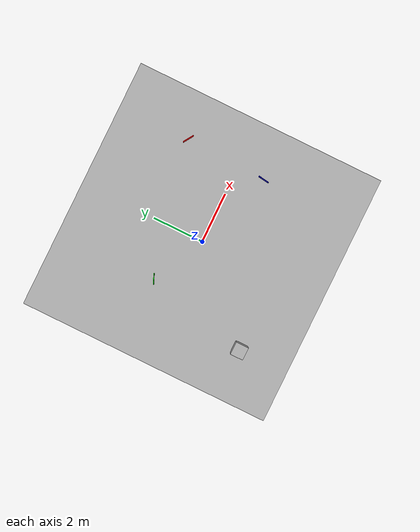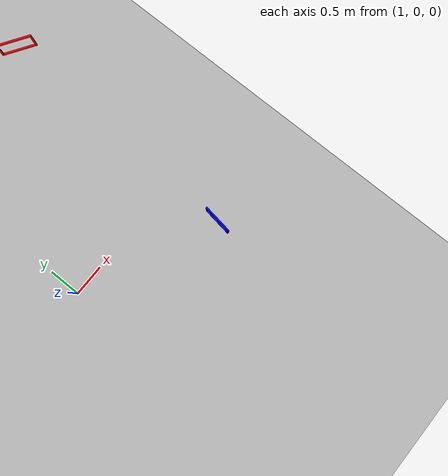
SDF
<sdf version="1.7">
 <world name="default">
  <scene>
   <grid>true</grid>
   <origin_visual>true</origin_visual>
   <ambient>0.5 0.5 0.5 1</ambient>
   <shadows>true</shadows>
  </scene>
  <include><uri>model://sun</uri></include>
  <plugin name="UTRAFMAN_gazebo" filename="libUTRAFMAN_gazebo.so"/>
  <include><name>floor</name><uri>model://DC/floor</uri><pose>0 0 0.025 0 0 0</pose></include>
  <include><name>vertiport</name><uri>model://DC/base_drone</uri><pose>-3 -3 0.26 0 0 0</pose></include>
  <include><name>frame_red</name><uri>model://DC/frame_red</uri><pose>3 2 2 0 0 1</pose></include>
  <include><name>frame_green</name><uri>model://DC/frame_green</uri><pose>-2 1 0.5 0 0 2</pose></include>
  <include><name>frame_blue</name><uri>model://DC/frame_blue</uri><pose>3 -1 1 0 0 3</pose></include>
 </world>
</sdf>

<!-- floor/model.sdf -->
<sdf version="1.5">

  <model name='floor'>
    <static>true</static>
    <link name='link'>
      <collision name='collisionsuelo'>
        <geometry>
          <box>
            <size>10 10 0.1</size>
          </box>
        </geometry>

        <surface>
          <friction>
            <ode>
              <mu>100.0</mu>
              <mu2>50.0</mu2>
              <slip1>0.0</slip1>
              <slip2>0.0</slip2>
            </ode>
          </friction>
        </surface>

      </collision>

      <visual name='visualsuelo'>
        <geometry>
          <box>
            <size>10 10 0.1</size>
          </box>
        </geometry>
        <material>
          <script>

            <uri>model://DC/floor/scripts</uri>
            <uri>model://DC/floor/materials</uri>
            <name>floorMat/Diffuse</name>
          </script>
        </material>
      </visual>
      <self_collide>0</self_collide>
      <kinematic>0</kinematic>
      <gravity>1</gravity>
    </link>
  </model>

</sdf>

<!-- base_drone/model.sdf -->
<sdf version="1.5">

	<model name="base_drone">
	  <static>true</static>
	  <link name="link">

	    <collision name="collision">

		    <geometry>
		      <box>
		        <size>0.5 0.5 0.50</size>
		      </box>
		    </geometry>

        <surface>
          <friction>
            <ode>
              <mu>100.0</mu>
              <mu2>50.0</mu2>
              <slip1>0.0</slip1>
              <slip2>0.0</slip2>
            </ode>
          </friction>
        </surface>

	    </collision>

      <visual name="visual">
		    <geometry>
		      <box>
		        <size>0.5 0.5 0.50</size>
		      </box>
		    </geometry>
	    </visual>

	  </link>
	</model>

</sdf>

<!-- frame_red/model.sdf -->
<sdf version="1.5">
<model name="frame_red">

<static>true</static>

<link name='framelink'>
    <!-- Marco de 40x20 cms. Borde de 3cms. -->

    <visual name='up'>
        <pose>0 0 0.10 0 0 0</pose>
        <geometry>
          <box>
            <size>0.02 0.42 0.02</size>
          </box>
        </geometry>
        <material>
          <ambient>1 0 0 1</ambient>
          <diffuse>1 0 0 1</diffuse>
        </material>
    </visual>

    <collision name='up_c'>
        <pose>0 0 0.10 0 0 0</pose>
        <geometry>
          <box>
            <size>0.02 0.42 0.02</size>
          </box>
        </geometry>
        <surface>
          <friction>
            <ode>
              <mu>0.1</mu>
              <mu2>0.2</mu2>
              <slip1>1.0</slip1>
              <slip2>1.0</slip2>
            </ode>
          </friction>
        </surface>
    </collision>

    <visual name='down'>
        <pose>0 0 -0.10 0 0 0</pose>
        <geometry>
          <box>
            <size>0.02 0.42 0.02</size>
          </box>
        </geometry>
        <material>
          <ambient>1 0 0 1</ambient>
          <diffuse>1 0 0 1</diffuse>
        </material>
    </visual>

    <collision name='down_c'>
        <pose>0 0 -0.10 0 0 0</pose>
        <geometry>
          <box>
            <size>0.02 0.42 0.02</size>
          </box>
        </geometry>
        <surface>
          <friction>
            <ode>
              <mu>0.1</mu>
              <mu2>0.2</mu2>
              <slip1>1.0</slip1>
              <slip2>1.0</slip2>
            </ode>
          </friction>
        </surface>
    </collision>

    <visual name='left'>
        <pose>0 -0.20 0 0 0 0</pose>
        <geometry>
          <box>
            <size>0.02 0.02 0.18</size>
          </box>
        </geometry>
        <material>
          <ambient>1 0 0 1</ambient>
          <diffuse>1 0 0 1</diffuse>
        </material>
    </visual>

    <collision name='left_c'>
        <pose>0 -0.20 0 0 0 0</pose>
        <geometry>
          <box>
            <size>0.02 0.02 0.18</size>
          </box>
        </geometry>
        <surface>
          <friction>
            <ode>
              <mu>0.1</mu>
              <mu2>0.2</mu2>
              <slip1>1.0</slip1>
              <slip2>1.0</slip2>
            </ode>
          </friction>
        </surface>
    </collision>

    <visual name='right'>
        <pose>0 0.20 0 0 0 0</pose>
        <geometry>
          <box>
            <size>0.02 0.02 0.18</size>
          </box>
        </geometry>
        <material>
          <ambient>1 0 0 1</ambient>
          <diffuse>1 0 0 1</diffuse>
        </material>
    </visual>

    <collision name='right_c'>
        <pose>0 0.20 0 0 0 0</pose>
        <geometry>
          <box>
            <size>0.02 0.02 0.18</size>
          </box>
        </geometry>
        <surface>
          <friction>
            <ode>
              <mu>0.1</mu>
              <mu2>0.2</mu2>
              <slip1>1.0</slip1>
              <slip2>1.0</slip2>
            </ode>
          </friction>
        </surface>
    </collision>

</link>

</model>

</sdf>

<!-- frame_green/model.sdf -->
<sdf version="1.5">
<model name="frame_green">

<static>true</static>

<link name='framelink'>
    <!-- Marco de 40x20 cms. Borde de 3cms. -->

    <visual name='up'>
        <pose>0 0 0.10 0 0 0</pose>
        <geometry>
          <box>
            <size>0.02 0.42 0.02</size>
          </box>
        </geometry>
        <material>
          <ambient>0 1 0 1</ambient>
          <diffuse>0 1 0 1</diffuse>
        </material>
    </visual>

    <collision name='up_c'>
        <pose>0 0 0.10 0 0 0</pose>
        <geometry>
          <box>
            <size>0.02 0.42 0.02</size>
          </box>
        </geometry>
        <surface>
          <friction>
            <ode>
              <mu>0.1</mu>
              <mu2>0.2</mu2>
              <slip1>1.0</slip1>
              <slip2>1.0</slip2>
            </ode>
          </friction>
        </surface>
    </collision>

    <visual name='down'>
        <pose>0 0 -0.10 0 0 0</pose>
        <geometry>
          <box>
            <size>0.02 0.42 0.02</size>
          </box>
        </geometry>
        <material>
          <ambient>0 1 0 1</ambient>
          <diffuse>0 1 0 1</diffuse>
        </material>
    </visual>

    <collision name='down_c'>
        <pose>0 0 -0.10 0 0 0</pose>
        <geometry>
          <box>
            <size>0.02 0.42 0.02</size>
          </box>
        </geometry>
        <surface>
          <friction>
            <ode>
              <mu>0.1</mu>
              <mu2>0.2</mu2>
              <slip1>1.0</slip1>
              <slip2>1.0</slip2>
            </ode>
          </friction>
        </surface>
    </collision>

    <visual name='left'>
        <pose>0 -0.20 0 0 0 0</pose>
        <geometry>
          <box>
            <size>0.02 0.02 0.18</size>
          </box>
        </geometry>
        <material>
          <ambient>0 1 0 1</ambient>
          <diffuse>0 1 0 1</diffuse>
        </material>
    </visual>

    <collision name='left_c'>
        <pose>0 -0.20 0 0 0 0</pose>
        <geometry>
          <box>
            <size>0.02 0.02 0.18</size>
          </box>
        </geometry>
        <surface>
          <friction>
            <ode>
              <mu>0.1</mu>
              <mu2>0.2</mu2>
              <slip1>1.0</slip1>
              <slip2>1.0</slip2>
            </ode>
          </friction>
        </surface>
    </collision>

    <visual name='right'>
        <pose>0 0.20 0 0 0 0</pose>
        <geometry>
          <box>
            <size>0.02 0.02 0.18</size>
          </box>
        </geometry>
        <material>
          <ambient>0 1 0 1</ambient>
          <diffuse>0 1 0 1</diffuse>
        </material>
    </visual>

    <collision name='right_c'>
        <pose>0 0.20 0 0 0 0</pose>
        <geometry>
          <box>
            <size>0.02 0.02 0.18</size>
          </box>
        </geometry>
        <surface>
          <friction>
            <ode>
              <mu>0.1</mu>
              <mu2>0.2</mu2>
              <slip1>1.0</slip1>
              <slip2>1.0</slip2>
            </ode>
          </friction>
        </surface>
    </collision>

</link>

</model>

</sdf>

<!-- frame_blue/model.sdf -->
<sdf version="1.5">
<model name="frame_blue">

<static>true</static>

<link name='framelink'>
    <!-- Marco de 40x20 cms. Borde de 3cms. -->

    <visual name='up'>
        <pose>0 0 0.10 0 0 0</pose>
        <geometry>
          <box>
            <size>0.02 0.42 0.02</size>
          </box>
        </geometry>
        <material>
          <ambient>0 0 1 1</ambient>
          <diffuse>0 0 1 1</diffuse>
        </material>
    </visual>

    <collision name='up_c'>
        <pose>0 0 0.10 0 0 0</pose>
        <geometry>
          <box>
            <size>0.02 0.42 0.02</size>
          </box>
        </geometry>
        <surface>
          <friction>
            <ode>
              <mu>0.1</mu>
              <mu2>0.2</mu2>
              <slip1>1.0</slip1>
              <slip2>1.0</slip2>
            </ode>
          </friction>
        </surface>
    </collision>

    <visual name='down'>
        <pose>0 0 -0.10 0 0 0</pose>
        <geometry>
          <box>
            <size>0.02 0.42 0.02</size>
          </box>
        </geometry>
        <material>
          <ambient>0 0 1 1</ambient>
          <diffuse>0 0 1 1</diffuse>
        </material>
    </visual>

    <collision name='down_c'>
        <pose>0 0 -0.10 0 0 0</pose>
        <geometry>
          <box>
            <size>0.02 0.42 0.02</size>
          </box>
        </geometry>
        <surface>
          <friction>
            <ode>
              <mu>0.1</mu>
              <mu2>0.2</mu2>
              <slip1>1.0</slip1>
              <slip2>1.0</slip2>
            </ode>
          </friction>
        </surface>
    </collision>

    <visual name='left'>
        <pose>0 -0.20 0 0 0 0</pose>
        <geometry>
          <box>
            <size>0.02 0.02 0.18</size>
          </box>
        </geometry>
        <material>
          <ambient>0 0 1 1</ambient>
          <diffuse>0 0 1 1</diffuse>
        </material>
    </visual>

    <collision name='left_c'>
        <pose>0 -0.20 0 0 0 0</pose>
        <geometry>
          <box>
            <size>0.02 0.02 0.18</size>
          </box>
        </geometry>
        <surface>
          <friction>
            <ode>
              <mu>0.1</mu>
              <mu2>0.2</mu2>
              <slip1>1.0</slip1>
              <slip2>1.0</slip2>
            </ode>
          </friction>
        </surface>
    </collision>

    <visual name='right'>
        <pose>0 0.20 0 0 0 0</pose>
        <geometry>
          <box>
            <size>0.02 0.02 0.18</size>
          </box>
        </geometry>
        <material>
          <ambient>0 0 1 1</ambient>
          <diffuse>0 0 1 1</diffuse>
        </material>
    </visual>

    <collision name='right_c'>
        <pose>0 0.20 0 0 0 0</pose>
        <geometry>
          <box>
            <size>0.02 0.02 0.18</size>
          </box>
        </geometry>
        <surface>
          <friction>
            <ode>
              <mu>0.1</mu>
              <mu2>0.2</mu2>
              <slip1>1.0</slip1>
              <slip2>1.0</slip2>
            </ode>
          </friction>
        </surface>
    </collision>

</link>

</model>

</sdf>
